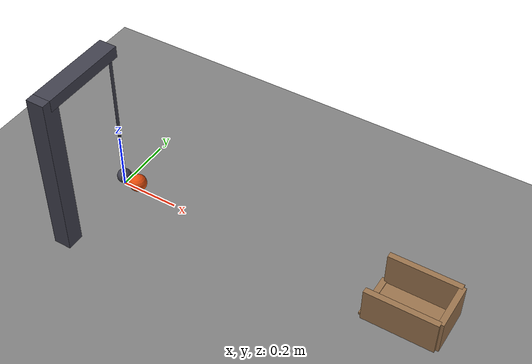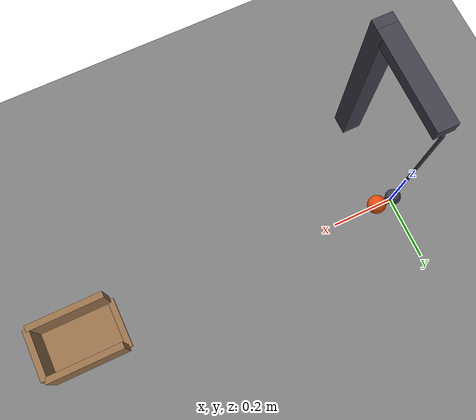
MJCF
<mujoco model="pendulum_strikes_ball_into_cup">
  <compiler angle="radian"/>
  <option timestep="0.002"/>
  <worldbody>
    <geom name="floor" type="plane" size="6 6 0.1" friction="0.8 0.005 0.0005"/>
    <geom name="pendulum_stand_arm" type="box" pos="0 -0.15 0.56" size="0.03 0.15 0.02" rgba="0.25 0.25 0.3 1"/>
    <geom name="pendulum_stand_post" type="box" pos="0 -0.3 0.29" size="0.03 0.03 0.29" rgba="0.25 0.25 0.3 1"/>
    <body name="pendulum" pos="0 0 0.535">
      <joint name="pivot" type="hinge" pos="0 0 0" axis="0 1 0"/>
      <geom name="pendulum_bob" type="sphere" pos="0 0 -0.5" size="0.025" mass="0.2" rgba="0.25 0.25 0.3 1"/>
      <geom name="pendulum_rod" type="capsule" size="0.005" fromto="0 0 0 0 0 -0.475" mass="0.03" rgba="0.25 0.25 0.3 1"/>
    </body>
    <body name="ball" pos="0.056 0 0.03">
      <freejoint/>
      <geom name="ball" type="sphere" pos="0 0 0" size="0.03" mass="0.1" condim="6" friction="0.8 0.005 0.0005" solref="0.01 1" rgba="0.9 0.3 0.05 1"/>
    </body>
    <body name="cup">
      <geom name="cup_base" type="box" pos="1.056 0 0.002" size="0.12 0.08 0.002" solref="0.01 1" rgba="0.6 0.45 0.3 1"/>
      <geom name="cup_near_wall" type="box" pos="0.936 0 0.004" size="0.01 0.08 0.004" solref="0.01 1" rgba="0.6 0.45 0.3 1"/>
      <geom name="cup_far_wall" type="box" pos="1.176 0 0.06" size="0.01 0.08 0.06" solref="0.01 1" rgba="0.6 0.45 0.3 1"/>
      <geom name="cup_left_wall" type="box" pos="1.056 0.08 0.06" size="0.12 0.01 0.06" solref="0.01 1" rgba="0.6 0.45 0.3 1"/>
      <geom name="cup_right_wall" type="box" pos="1.056 -0.08 0.06" size="0.12 0.01 0.06" solref="0.01 1" rgba="0.6 0.45 0.3 1"/>
    </body>
  </worldbody>
  <keyframe>
    <key name="start" qpos="1.0472 0.056 0 0.03 1 0 0 0" qvel="0 0 0 0 0 0 0"/>
  </keyframe>
</mujoco>
